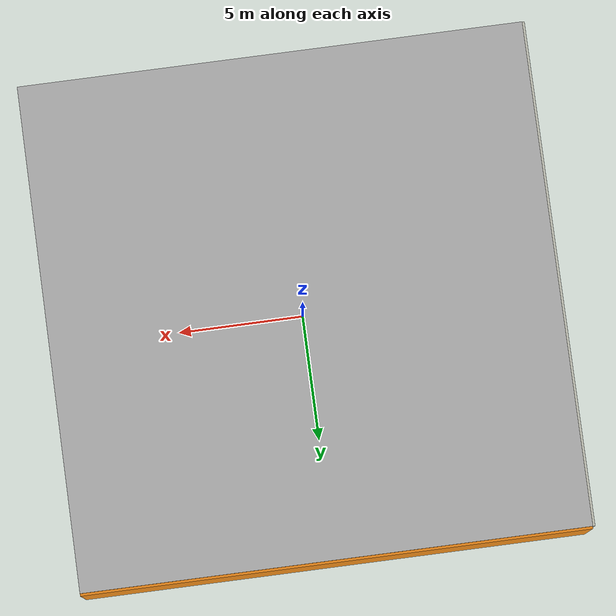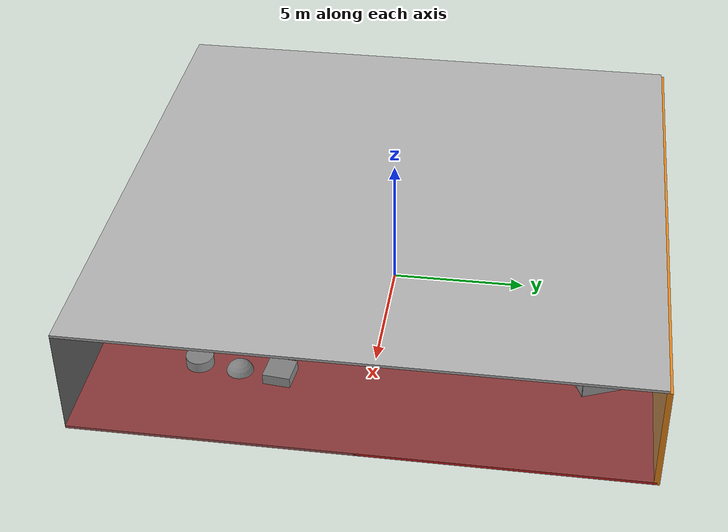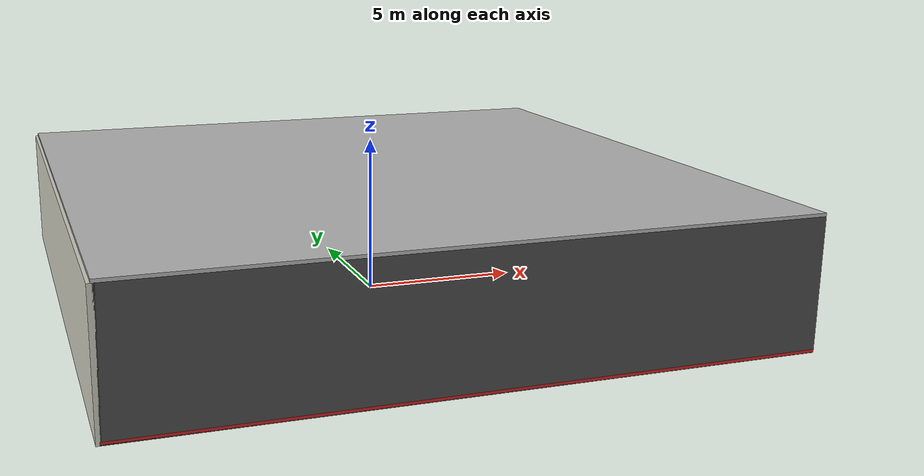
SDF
<sdf version="1.4">
 <world name="default">
  <physics type="ode">
   <max_step_size>0.001</max_step_size>
   <real_time_factor>1</real_time_factor>
   <real_time_update_rate>1000</real_time_update_rate>
   <gravity>0 0 -9.8</gravity>
  </physics>
  <scene><ambient>0.4 0.4 0.4 1</ambient><background>0.7 0.7 0.7 1</background><shadows>1</shadows></scene>
  <model name="Surrounding">
   <static>1</static>
   <link name="Ceiling">
    <collision name="Ceiling_Collision"><geometry><box><size>20 20 0.1</size></box></geometry></collision>
    <visual name="Ceiling_Visual">
     <geometry><box><size>20 20 0.1</size></box></geometry>
     <material>
      <script><uri>file://media/materials/scripts/gazebo.material</uri><name>Gazebo/JointAnchor</name></script>
     </material>
    </visual>
    <pose>0 0 4.05 0 0 0</pose>
   </link>
   <link name="Wall_South">
    <collision name="Wall_South_Collision">
     <geometry><box><size>20 0 4</size></box></geometry>
     <pose>0 0 2 0 -0 0</pose>
    </collision>
    <visual name="Wall_South_Visual">
     <pose>0 0 2 0 -0 0</pose>
     <geometry><box><size>20 0 4</size></box></geometry>
     <material>
      <script><uri>file://media/materials/scripts/gazebo.material</uri><name>Gazebo/DarkGrey</name></script>
     </material>
    </visual>
    <velocity_decay><linear>0</linear><angular>0</angular></velocity_decay>
    <pose>0 -10 0 0 -0 0</pose>
   </link>
   <link name="Wall_East">
    <collision name="Wall_21_Collision">
     <geometry><box><size>20 0 4</size></box></geometry>
     <pose>0 0 2 0 -0 0</pose>
    </collision>
    <visual name="Wall_21_Visual">
     <pose>0 0 2 0 -0 0</pose>
     <geometry><box><size>20 0 4</size></box></geometry>
     <material>
      <script><uri>file://media/materials/scripts/gazebo.material</uri><name>Gazebo/GreyTransparent</name></script>
     </material>
    </visual>
    <velocity_decay><linear>0</linear><angular>0</angular></velocity_decay>
    <pose>10 0 0 0 -0 1.5708</pose>
   </link>
   <link name="Wall_North">
    <collision name="Wall_22_Collision">
     <geometry><box><size>20 0.2 4</size></box></geometry>
     <pose>0 0 2 0 -0 0</pose>
    </collision>
    <visual name="Wall_22_Visual">
     <pose>0 0 2 0 -0 0</pose>
     <geometry><box><size>20 0.2 4</size></box></geometry>
     <material>
      <script><uri>file://media/materials/scripts/gazebo.material</uri><name>Gazebo/Orange</name></script>
     </material>
    </visual>
    <velocity_decay><linear>0</linear><angular>0</angular></velocity_decay>
    <pose>0 10 0 0 -0 0</pose>
   </link>
   <link name="Wall_West">
    <collision name="Wall_23_Collision">
     <geometry><box><size>20 0.2 4</size></box></geometry>
     <pose>0 0 2 0 -0 0</pose>
    </collision>
    <visual name="Wall_23_Visual">
     <pose>0 0 2 0 -0 0</pose>
     <geometry><box><size>20 0.2 4</size></box></geometry>
     <material>
      <script><uri>file://media/materials/scripts/gazebo.material</uri><name>Gazebo/PaintedWall</name></script>
     </material>
    </visual>
    <velocity_decay><linear>0</linear><angular>0</angular></velocity_decay>
    <pose>-10 0 0 0 0 -1.5708</pose>
   </link>
   <link name="Ground_link">
    <collision name="collision">
     <pose>0 0 .05 0 -0 0</pose>
     <geometry><box><size>20 20 0.1</size></box></geometry>
    </collision>
    <visual name="visual">
     <pose>0 0 .05 0 -0 0</pose>
     <geometry><box><size>20 20 0.1</size></box></geometry>
     <material>
      <script><uri>file://media/materials/scripts/gazebo.material</uri><name>Gazebo/RedGlow</name></script>
     </material>
    </visual>
   </link>
   <static>1</static>
  </model>
  <spherical_coordinates>
   <surface_model>EARTH_WGS84</surface_model>
   <latitude_deg>0</latitude_deg>
   <longitude_deg>0</longitude_deg>
   <elevation>0</elevation>
   <heading_deg>0</heading_deg>
  </spherical_coordinates>
  <light name="lightball_0" type="diffuse">
   <diffuse>0.8 0.8 0.8 1</diffuse>
   <specular>0.2 0.2 0.2 1</specular>
   <attenuation>
    <range>100</range>
    <constant>0.7</constant>
    <linear>0.01</linear>
    <quadratic>0.001</quadratic>
   </attenuation>
   <direction>-0.5 0.1 -0.9</direction>
   <pose>-8.24458907663 1.91744723525 1.98924825407 0 0 0</pose>
  </light>
  <light name="lightball_1" type="diffuse">
   <diffuse>0.8 0.8 0.8 1</diffuse>
   <specular>0.2 0.2 0.2 1</specular>
   <attenuation>
    <range>100</range>
    <constant>0.7</constant>
    <linear>0.01</linear>
    <quadratic>0.001</quadratic>
   </attenuation>
   <direction>-0.5 0.1 -0.9</direction>
   <pose>-9.52477244555 -8.40352171113 2.69577581412 0 0 0</pose>
  </light>
  <light name="lightball_2" type="diffuse">
   <diffuse>0.8 0.8 0.8 1</diffuse>
   <specular>0.2 0.2 0.2 1</specular>
   <attenuation>
    <range>100</range>
    <constant>0.7</constant>
    <linear>0.01</linear>
    <quadratic>0.001</quadratic>
   </attenuation>
   <direction>-0.5 0.1 -0.9</direction>
   <pose>3.98258627897 -7.10785579851 3.46967322981 0 0 0</pose>
  </light>
  <include>
   <uri>model://construction_cone</uri>
   <pose>-6.95082679733 -0.580317867245 0 0 0 2.36220933388</pose>
  </include>
  <include><uri>model://table</uri><pose>-5.0114423487 -0.380957793023 0 0 0 1.71119985155</pose></include>
  <include><uri>model://cabinet</uri><pose>-3.41516615046 1.47547096252 0 0 0 2.98208751666</pose></include>
  <include><uri>model://cabinet</uri><pose>-0.440895370831 -1.74365082809 0 0 0 1.58746231598</pose></include>
  <include>
   <uri>model://textured_shapes</uri>
   <pose>-2.32154512488 7.95926311004 0 0 0 2.1288050784</pose>
  </include>
  <include><uri>model://cabinet</uri><pose>2.256388884 -3.50871627367 0 0 0 1.32718787818</pose></include>
  <include>
   <uri>model://robocup_3Dsim_goal</uri>
   <pose>0.72554700738 4.18052522287 0 0 0 0.294972525091</pose>
  </include>
  <include>
   <uri>model://robocup_3Dsim_goal</uri>
   <pose>5.24611633235 8.20551615875 0 0 0 0.384063584747</pose>
  </include>
  <include>
   <uri>model://textured_shapes</uri>
   <pose>6.38063534758 -4.70885854813 0 0 0 3.04016781291</pose>
  </include>
 </world>
</sdf>

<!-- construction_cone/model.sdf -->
<sdf version="1.5">
  <model name="Construction Cone">
    <link name="link">
      <collision name="collision">
        <geometry>
          <mesh>
            <scale>10 10 10</scale>
            <uri>file://isr-testbed/construction_cone/meshes/construction_cone.dae</uri>
          </mesh>
        </geometry>
      </collision>
      <visual name="visual">
        <geometry>
          <mesh>
            <scale>10 10 10</scale>
            <uri>file://isr-testbed/construction_cone/meshes/construction_cone.dae</uri>
          </mesh>
        </geometry>
      </visual>
    </link>
  </model>
</sdf>

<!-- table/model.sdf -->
<sdf version="1.5">
  <model name="table">
    <static>true</static>
    <link name="link">
      <collision name="surface">
        <pose>0 0 1.0 0 0 0</pose>
        <geometry>
          <box>
            <size>1.5 0.8 0.03</size>
          </box>
        </geometry>
        <surface>
          <friction>
            <ode>
              <mu>0.6</mu>
              <mu2>0.6</mu2>
            </ode>
          </friction>
        </surface>
      </collision>
      <visual name="visual1">
        <pose>0 0 1.0 0 0 0</pose>
        <geometry>
          <box>
            <size>1.5 0.8 0.03</size>
          </box>
        </geometry>
        <material>
          <script>
            <uri>model://media/materials/scripts/gazebo.material</uri>
            <name>Gazebo/Wood</name>
          </script>
        </material>
      </visual>
      <collision name="front_left_leg">
        <pose>0.68 0.38 0.5 0 0 0</pose>
        <geometry>
          <cylinder>
            <radius>0.02</radius>
            <length>1.0</length>
          </cylinder>
        </geometry>
      </collision>
      <visual name="front_left_leg">
        <pose>0.68 0.38 0.5 0 0 0</pose>
        <geometry>
          <cylinder>
            <radius>0.02</radius>
            <length>1.0</length>
          </cylinder>
        </geometry>
        <material>
          <script>
            <uri>model://media/materials/scripts/gazebo.material</uri>
            <name>Gazebo/Grey</name>
          </script>
        </material>
      </visual>
      <collision name="front_right_leg">
        <pose>0.68 -0.38 0.5 0 0 0</pose>
        <geometry>
          <cylinder>
            <radius>0.02</radius>
            <length>1.0</length>
          </cylinder>
        </geometry>
      </collision>
      <visual name="front_right_leg">
        <pose>0.68 -0.38 0.5 0 0 0</pose>
        <geometry>
          <cylinder>
            <radius>0.02</radius>
            <length>1.0</length>
          </cylinder>
        </geometry>
        <material>
          <script>
            <uri>model://media/materials/scripts/gazebo.material</uri>
            <name>Gazebo/Grey</name>
          </script>
        </material>
      </visual>
      <collision name="back_right_leg">
        <pose>-0.68 -0.38 0.5 0 0 0</pose>
        <geometry>
          <cylinder>
            <radius>0.02</radius>
            <length>1.0</length>
          </cylinder>
        </geometry>
      </collision>
      <visual name="back_right_leg">
        <pose>-0.68 -0.38 0.5 0 0 0</pose>
        <geometry>
          <cylinder>
            <radius>0.02</radius>
            <length>1.0</length>
          </cylinder>
        </geometry>
        <material>
          <script>
            <uri>model://media/materials/scripts/gazebo.material</uri>
            <name>Gazebo/Grey</name>
          </script>
        </material>
      </visual>
      <collision name="back_left_leg">
        <pose>-0.68 0.38 0.5 0 0 0</pose>
        <geometry>
          <cylinder>
            <radius>0.02</radius>
            <length>1.0</length>
          </cylinder>
        </geometry>
      </collision>
      <visual name="back_left_leg">
        <pose>-0.68 0.38 0.5 0 0 0</pose>
        <geometry>
          <cylinder>
            <radius>0.02</radius>
            <length>1.0</length>
          </cylinder>
        </geometry>
        <material>
          <script>
            <uri>model://media/materials/scripts/gazebo.material</uri>
            <name>Gazebo/Grey</name>
          </script>
        </material>
      </visual>
    </link>
  </model>
</sdf>

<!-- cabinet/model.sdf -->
<sdf version="1.5">
  <model name="cabinet">
    <static>true</static>
    <link name="cabinet_bottom_plate">
      <inertial>
        <pose>0 0 -1 0 0 0</pose>
        <inertia>
          <ixx>2.050000</ixx>
          <ixy>0</ixy>
          <ixz>0</ixz>
          <iyy>2.050000</iyy>
          <iyz>0</iyz>
          <izz>2.050000</izz>
        </inertia>
        <mass>25.000000</mass>
      </inertial>
      <collision name="cabinet_bottom_plate_geom">
        <pose>0 0 0.010000 0 0 0</pose>
        <geometry>
          <box>
            <size>0.450000 0.450000 0.020000</size>
          </box>
        </geometry>
      </collision>
      <visual name="cabinet_bottom_plate_geom_visual">
        <pose>0 0 0.010000 0 0 0</pose>
        <geometry>
          <box>
            <size>0.450000 0.450000 0.020000</size>
          </box>
        </geometry>
        <material>
          <script>
            <uri>model://media/materials/scripts/gazebo.material</uri>
            <name>Gazebo/Wood</name>
          </script>
        </material>
      </visual>
      <collision name="cabinet_bottom_plate_geom_cabinet_back_plate">
        <pose>0.235000 0 0.510000 0 0 0</pose>
        <geometry>
          <box>
            <size>0.020000 0.450000 1.020000</size>
          </box>
        </geometry>
      </collision>
      <visual name="cabinet_bottom_plate_geom_cabinet_back_plate_visual">
        <pose>0.235000 0 0.510000 0 0 0</pose>
        <geometry>
          <box>
            <size>0.020000 0.450000 1.020000</size>
          </box>
        </geometry>
        <material>
          <script>
            <uri>model://media/materials/scripts/gazebo.material</uri>
            <name>Gazebo/Wood</name>
          </script>
        </material>
      </visual>
      <collision name="cabinet_bottom_plate_geom_cabinet_left_plate">
        <pose>0 0.235000 0.510000 0 0 0</pose>
        <geometry>
          <box>
            <size>0.450000 0.020000 1.020000</size>
          </box>
        </geometry>
      </collision>
      <visual name="cabinet_bottom_plate_geom_cabinet_left_plate_visual">
        <pose>0 0.235000 0.510000 0 0 0</pose>
        <geometry>
          <box>
            <size>0.450000 0.020000 1.020000</size>
          </box>
        </geometry>
        <material>
          <script>
            <uri>model://media/materials/scripts/gazebo.material</uri>
            <name>Gazebo/Wood</name>
          </script>
        </material>
      </visual>
      <collision name="cabinet_bottom_plate_geom_cabinet_middle_plate">
        <pose>0 0 0.510000 0 0 0</pose>
        <geometry>
          <box>
            <size>0.450000 0.450000 0.020000</size>
          </box>
        </geometry>
      </collision>
      <visual name="cabinet_bottom_plate_geom_cabinet_middle_plate_visual">
        <pose>0 0 0.510000 0 0 0</pose>
        <geometry>
          <box>
            <size>0.450000 0.450000 0.020000</size>
          </box>
        </geometry>
        <material>
          <script>
            <uri>model://media/materials/scripts/gazebo.material</uri>
            <name>Gazebo/Wood</name>
          </script>
        </material>
      </visual>
      <collision name="cabinet_bottom_plate_geom_cabinet_right_plate">
        <pose>0 -0.235000 0.510000 0 0 0</pose>
        <geometry>
          <box>
            <size>0.450000 0.020000 1.020000</size>
          </box>
        </geometry>
      </collision>
      <visual name="cabinet_bottom_plate_geom_cabinet_right_plate_visual">
        <pose>0 -0.235000 0.510000 0 0 0</pose>
        <geometry>
          <box>
            <size>0.450000 0.020000 1.020000</size>
          </box>
        </geometry>
        <material>
          <script>
            <uri>model://media/materials/scripts/gazebo.material</uri>
            <name>Gazebo/Wood</name>
          </script>
        </material>
      </visual>
      <collision name="cabinet_bottom_plate_geom_cabinet_top_plate">
        <pose>0 0 1.010000 0 0 0</pose>
        <geometry>
          <box>
            <size>0.450000 0.450000 0.020000</size>
          </box>
        </geometry>
      </collision>
      <visual name="cabinet_bottom_plate_geom_cabinet_top_plate_visual">
        <pose>0 0 1.010000 0 0 0</pose>
        <geometry>
          <box>
            <size>0.450000 0.450000 0.020000</size>
          </box>
        </geometry>
        <material>
          <script>
            <uri>model://media/materials/scripts/gazebo.material</uri>
            <name>Gazebo/Wood</name>
          </script>
        </material>
      </visual>
    </link>
  </model>
</sdf>

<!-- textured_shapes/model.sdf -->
<sdf version="1.6">
  <model name="textured_shapes">
    <pose>0 0 0.5 0 0 0</pose>
    <link name="box">
      <pose>0 -1.5 0 0 0 0</pose>
      <collision name="collision">
        <geometry>
          <box>
            <size>1 1 1</size>
          </box>
        </geometry>
      </collision>
      <visual name="visual">
        <geometry>
          <box>
            <size>1 1 1</size>
          </box>
        </geometry>
        <material>
          <script>
            <uri>model://../model_source/models/textured_shapes/materials/scripts</uri>
            <uri>model://../model_source/models/textured_shapes/materials/textures</uri>
            <name>TexturedShape/Squares</name>
          </script>
        </material>
      </visual>
    </link>
    <link name="sphere">
      <collision name="collision">
        <geometry>
          <sphere>
            <radius>0.5</radius>
          </sphere>
        </geometry>
      </collision>
      <visual name="visual">
        <geometry>
          <sphere>
            <radius>0.5</radius>
          </sphere>
        </geometry>
        <material>
          <script>
            <uri>model://../model_source/models/textured_shapes/materials/scripts</uri>
            <uri>model://../model_source/models/textured_shapes/materials/textures</uri>
            <name>TexturedShape/Squares</name>
          </script>
        </material>
      </visual>
    </link>
    <link name="cylinder">
      <pose>0 1.5 0 0 0 0</pose>
      <collision name="collision">
        <geometry>
          <cylinder>
            <radius>0.5</radius>
            <length>1</length>
          </cylinder>
        </geometry>
      </collision>
      <visual name="visual">
        <geometry>
          <cylinder>
            <radius>0.5</radius>
            <length>1</length>
          </cylinder>
        </geometry>
        <material>
          <script>
            <uri>model://../model_source/models/textured_shapes/materials/scripts</uri>
            <uri>model://../model_source/models/textured_shapes/materials/textures</uri>
            <name>TexturedShape/Squares</name>
          </script>
        </material>
      </visual>
    </link>
  </model>
</sdf>

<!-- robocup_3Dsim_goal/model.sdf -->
<sdf version="1.5">
  <model name="robocup_3d_goal">
    <static>true</static>
    <link name="left_post">
      <pose>0 1.05 0.45 0 0 0</pose>
      <collision name="collision">
        <geometry>
          <cylinder>
            <radius>0.05</radius>
            <length>0.9</length>
          </cylinder>
        </geometry>
      </collision>
      <visual name="visual">
        <geometry>
          <cylinder>
            <radius>0.05</radius>
            <length>0.9</length>
          </cylinder>
        </geometry>
        <material>
          <script>
            <uri>file://media/materials/scripts/gazebo.material</uri>
            <name>Gazebo/ZincYellow</name>
          </script>
        </material>
      </visual>
    </link>
    <link name="left_support_horiz_lower">
      <pose>0.30 1.05 0.01 0 0 0</pose>
      <collision name="collision">
        <geometry>
          <box>
            <size>0.50 0.02 0.02</size>
          </box>
        </geometry>
      </collision>
      <visual name="visual">
        <geometry>
          <box>
            <size>0.50 0.02 0.02</size>
          </box>
        </geometry>
        <material>
          <script>
            <uri>file://media/materials/scripts/gazebo.material</uri>
            <name>Gazebo/White</name>
          </script>
        </material>
      </visual>
    </link>
    <link name="left_support_horiz_upper">
      <pose>0.30 1.05 0.79 0 0 0</pose>
      <collision name="collision">
        <geometry>
          <box>
            <size>0.50 0.02 0.02</size>
          </box>
        </geometry>
      </collision>
      <visual name="visual">
        <geometry>
          <box>
            <size>0.50 0.02 0.02</size>
          </box>
        </geometry>
        <material>
          <script>
            <uri>file://media/materials/scripts/gazebo.material</uri>
            <name>Gazebo/White</name>
          </script>
        </material>
      </visual>
    </link>
    <link name="left_support_vertical">
      <pose>0.56 1.05 0.4 0 1.5708 0</pose>
      <collision name="collision">
        <geometry>
          <box>
            <size>0.80 0.02 0.02</size>
          </box>
        </geometry>
      </collision>
      <visual name="visual">
        <geometry>
          <box>
            <size>0.80 0.02 0.02</size>
          </box>
        </geometry>
        <material>
          <script>
            <uri>file://media/materials/scripts/gazebo.material</uri>
            <name>Gazebo/White</name>
          </script>
        </material>
      </visual>
    </link>
    <link name="right_support_horiz_lower">
      <pose>0.30 -1.05 0.01 0 0 0</pose>
      <collision name="collision">
        <geometry>
          <box>
            <size>0.50 0.02 0.02</size>
          </box>
        </geometry>
      </collision>
      <visual name="visual">
        <geometry>
          <box>
            <size>0.50 0.02 0.02</size>
          </box>
        </geometry>
        <material>
          <script>
            <uri>file://media/materials/scripts/gazebo.material</uri>
            <name>Gazebo/White</name>
          </script>
        </material>
      </visual>
    </link>
    <link name="right_support_horiz_upper">
      <pose>0.30 -1.05 0.79 0 0 0</pose>
      <collision name="collision">
        <geometry>
          <box>
            <size>0.50 0.02 0.02</size>
          </box>
        </geometry>
      </collision>
      <visual name="visual">
        <geometry>
          <box>
            <size>0.50 0.02 0.02</size>
          </box>
        </geometry>
        <material>
          <script>
            <uri>file://media/materials/scripts/gazebo.material</uri>
            <name>Gazebo/White</name>
          </script>
        </material>
      </visual>
    </link>
    <link name="right_support_vertical">
      <pose>0.56 -1.05 0.4 0 1.5708 0</pose>
      <collision name="collision">
        <geometry>
          <box>
            <size>0.80 0.02 0.02</size>
          </box>
        </geometry>
      </collision>
      <visual name="visual">
        <geometry>
          <box>
            <size>0.80 0.02 0.02</size>
          </box>
        </geometry>
        <material>
          <script>
            <uri>file://media/materials/scripts/gazebo.material</uri>
            <name>Gazebo/White</name>
          </script>
        </material>
      </visual>
    </link>
    <link name="center_support_horiz_lower">
      <pose>0.56 0 0.01 0 1.5708 0</pose>
      <collision name="collision">
        <geometry>
          <box>
            <size>0.02 2.08 0.02</size>
          </box>
        </geometry>
      </collision>
      <visual name="visual">
        <geometry>
          <box>
            <size>0.02 2.08 0.02</size>
          </box>
        </geometry>
        <material>
          <script>
            <uri>file://media/materials/scripts/gazebo.material</uri>
            <name>Gazebo/White</name>
          </script>
        </material>
      </visual>
    </link>
    <link name="center_support_horiz_upper">
      <pose>0.56 0 0.79 0 1.5708 0</pose>
      <collision name="collision">
        <geometry>
          <box>
            <size>0.02 2.08 0.02</size>
          </box>
        </geometry>
      </collision>
      <visual name="visual">
        <geometry>
          <box>
            <size>0.02 2.08 0.02</size>
          </box>
        </geometry>
        <material>
          <script>
            <uri>file://media/materials/scripts/gazebo.material</uri>
            <name>Gazebo/White</name>
          </script>
        </material>
      </visual>
    </link>
    <link name="right_post">
      <pose>0 -1.05 0.45 0 0 0</pose>
      <collision name="collision">
        <geometry>
          <cylinder>
            <radius>0.05</radius>
            <length>0.9</length>
          </cylinder>
        </geometry>
      </collision>
      <visual name="visual">
        <geometry>
          <cylinder>
            <radius>0.05</radius>
            <length>0.9</length>
          </cylinder>
        </geometry>
        <material>
          <script>
            <uri>file://media/materials/scripts/gazebo.material</uri>
            <name>Gazebo/ZincYellow</name>
          </script>
        </material>
      </visual>
    </link>
    <link name="crossbar">
      <pose>0 0 0.85 1.57 1.57 0</pose>
      <collision name="collision">
        <geometry>
          <cylinder>
            <radius>0.05</radius>
            <length>2.0</length>
          </cylinder>
        </geometry>
      </collision>
      <visual name="visual">
        <geometry>
          <cylinder>
            <radius>0.05</radius>
            <length>2.0</length>
          </cylinder>
        </geometry>
        <material>
          <script>
            <uri>file://media/materials/scripts/gazebo.material</uri>
            <name>Gazebo/ZincYellow</name>
          </script>
        </material>
      </visual>
    </link>
    <link name="center_net">
      <pose>0.56 0 0.40 0 0 0</pose>
      <collision name="collision">
        <geometry>
          <box>
            <size>0.01 2.1 0.80</size>
          </box>
        </geometry>
      </collision>
      <visual name="visual">
        <geometry>
          <box>
            <size>0.01 2.1 0.80</size>
          </box>
        </geometry>
        <material>
          <script>
            <uri>model://../model_source/models/robocup09_spl_field/materials/scripts/</uri>
            <uri>model://../model_source/models/robocup09_spl_field/materials/textures/</uri>
            <name>RoboCup/Net</name>
          </script>
        </material>
      </visual>
    </link>
    <link name="left_net">
      <pose>0.30 1.05 0.40 0 0 0</pose>
      <collision name="collision">
        <geometry>
          <box>
            <size>0.50 0.01 0.76</size>
          </box>
        </geometry>
      </collision>
      <visual name="visual">
        <geometry>
          <box>
            <size>0.50 0.01 0.76</size>
          </box>
        </geometry>
        <material>
          <script>
            <uri>model://../model_source/models/robocup09_spl_field/materials/scripts/</uri>
            <uri>model://../model_source/models/robocup09_spl_field/materials/textures/</uri>
            <name>RoboCup/Net</name>
          </script>
        </material>
      </visual>
    </link>
    <link name="right_net">
      <pose>0.30 -1.05 0.40 0 0 0</pose>
      <collision name="collision">
        <geometry>
          <box>
            <size>0.50 0.01 0.76</size>
          </box>
        </geometry>
      </collision>
      <visual name="visual">
        <geometry>
          <box>
            <size>0.50 0.01 0.76</size>
          </box>
        </geometry>
        <material>
          <script>
            <uri>model://../model_source/models/robocup09_spl_field/materials/scripts/</uri>
            <uri>model://../model_source/models/robocup09_spl_field/materials/textures/</uri>
            <name>RoboCup/Net</name>
          </script>
        </material>
      </visual>
    </link>
  </model>
</sdf>
